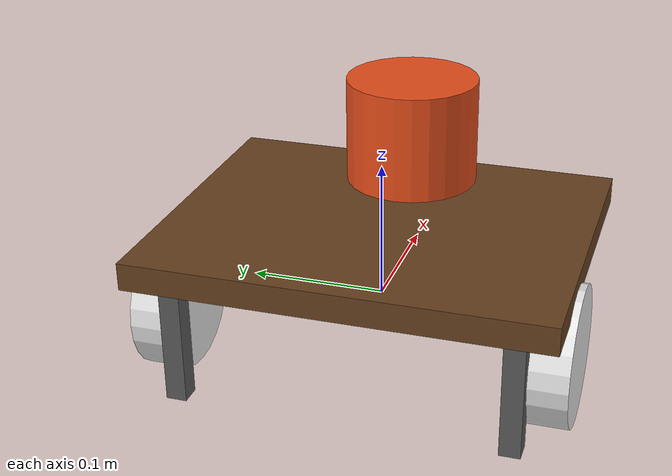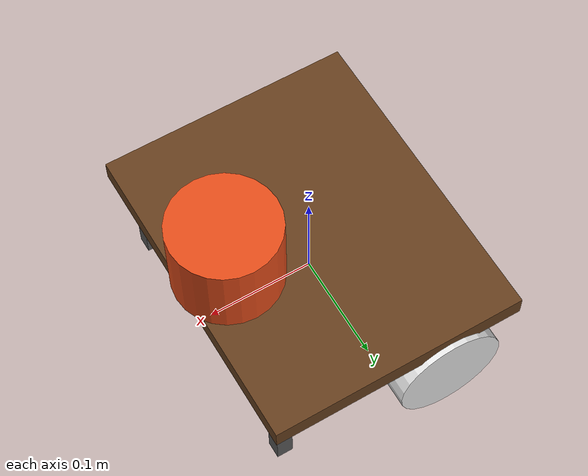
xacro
<?xml version="1.0" ?>
<robot xmlns:xacro="http://www.ros.org/wiki/xacro" name="demo_bot">

    <xacro:include filename="colors.xacro" />
    <xacro:include filename="inertial_macros.xacro"/>
    <xacro:include filename="demo_bot.xacro" />
    <xacro:include filename="lidar.xacro" />
    <xacro:include filename="gazebo_control.xacro" />

</robot>

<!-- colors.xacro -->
<robot xmlns:xacro="http://www.ros.org/wiki/xacro" name="demo_bot">

  <material name="blue">
    <color rgba="0.1 0.4 0.9 1"/>
  </material>
  <material name="red">
    <color rgba="0.9 0.3 0.1 1"/>
  </material>
  <material name="wood">
    <color rgba="0.4 0.25 0.12 1"/>
  </material>
  <material name="gray">
    <color rgba="0.35 0.35 0.35 1"/>
  </material>
  <material name="white">
    <color rgba="0.9 0.9 0.9 1"/>
  </material>

</robot>

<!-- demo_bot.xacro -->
<robot xmlns:xacro="http://www.ros.org/wiki/xacro" name="demo_bot">
    <xacro:include filename="wheels.xacro" />

    <!-- Base Link -->
    <link name="base_link">
        <!-- Table top -->
        <visual name="table_top">
        <origin xyz="0 0 0.05" rpy="0 0 0"/>
        <geometry>
            <box size="0.24 0.3 0.02" />
        </geometry>
        <material name="wood"/>
        </visual>
        <!-- Table legs (ground is at z = -0.05) -->
        <visual name="leg_fl">
        <origin xyz="0.1 0.12 0" rpy="0 0 0"/>
        <geometry><box size="0.015 0.015 0.1" /></geometry>
        <material name="gray"/>
        </visual>
        <visual name="leg_fr">
        <origin xyz="0.1 -0.12 0" rpy="0 0 0"/>
        <geometry><box size="0.015 0.015 0.1" /></geometry>
        <material name="gray"/>
        </visual>
        <visual name="leg_rl">
        <origin xyz="-0.1 0.12 0" rpy="0 0 0"/>
        <geometry><box size="0.015 0.015 0.1" /></geometry>
        <material name="gray"/>
        </visual>
        <visual name="leg_rr">
        <origin xyz="-0.1 -0.12 0" rpy="0 0 0"/>
        <geometry><box size="0.015 0.015 0.1" /></geometry>
        <material name="gray"/>
        </visual>
        <collision>
        <origin xyz="0 0 0" rpy="0 0 0"/>
        <geometry>
            <!-- All dimensions in meters -->
            <box size="0.2 0.24 0.06" />
        </geometry>
        </collision>

        <xacro:inertial_box mass="3" x="0.2" y="0.24" z="0.06">
            <origin xyz="0 0 0" rpy="0 0 0"/>
        </xacro:inertial_box>
    </link>

    <!-- Left Wheel -->
    <xacro:wheel prefix="left" y="0.14" rpy="${pi/2} 0 0" axis="-1"/>
    <!-- Right Wheel -->
    <xacro:wheel prefix="right" y="-0.14" rpy="-${pi/2} 0 0" axis="1"/>

    <!-- Fixed Caster -->
    <joint name="caster_joint" type="fixed">
        <origin xyz="0.06 0 -0.03"/>
        <parent link="base_link"/>
        <child link="caster"/>
    </joint>

    <link name="caster">
        <visual>
        <origin xyz="0 0 0" rpy="0 0 0"/>
        <geometry>
            <!-- All dimensions in meters -->
            <sphere radius="0.02" />
        </geometry>
        <material name="blue"/>
        </visual>
        <collision>
        <origin xyz="0 0 0" rpy="0 0 0"/>
        <geometry>
            <sphere radius="0.02" />
        </geometry>
        </collision>
    </link>

    <gazebo reference="caster">
        <mu1 value="0"/>
        <mu2 value="0"/>
    </gazebo>
</robot>

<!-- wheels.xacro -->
<robot xmlns:xacro="http://www.ros.org/wiki/xacro" name="demo_bot">

<!-- Create a Macro for a Wheel -->
<xacro:macro name="wheel" params="prefix y rpy axis">

    <!-- Wheel Joint -->
    <joint name="${prefix}_wheel_joint" type="continuous">
        <parent link="base_link"/>
        <child link="${prefix}_wheel"/>
        <origin xyz="-0.05 ${y} 0" rpy="${rpy}"/>
        <axis xyz="0 0 ${axis}"/>
        <limit effort="0.5" velocity="10.0"/>
    </joint>

    <!-- Wheel Link -->
    <link name="${prefix}_wheel">
        <origin rpy="0 0 0" xyz="0 0 0"/>
        <visual>
            <geometry>
                <cylinder length="0.03" radius="0.05" />
            </geometry>
            <material name="white"/>
        </visual>
        <collision>
            <geometry>
                <sphere radius="0.05"/>
            </geometry>
        </collision>
        <xacro:inertial_cylinder mass="0.1" length="0.03" radius="0.05">
            <origin xyz="0 0 0" rpy="0 0 0"/>
        </xacro:inertial_cylinder>
    </link>

    <gazebo reference="${prefix}_wheel">
        <mu1 value="0.7"/>
        <mu2 value="0.5"/>
    </gazebo>

</xacro:macro>

</robot>

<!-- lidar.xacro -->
<robot xmlns:xacro="http://www.ros.org/wiki/xacro" name="demo_bot">

    <joint name="lidar_joint" type="fixed">
        <origin xyz="0.08 0 0.10" rpy="0 0 0"/>
        <parent link="base_link"/>
        <child link="lidar_link"/>
    </joint>

    <gazebo reference="lidar_joint">
        <disableFixedJointLumping>true</disableFixedJointLumping>
    </gazebo>

    <link name="lidar_link">
        <visual>
            <origin xyz="0 0 0" rpy="0 0 0"/>
            <geometry>
                <cylinder radius="0.05" length="0.08"/>
            </geometry>
            <material name="red"/>
        </visual>
        <collision>
            <origin xyz="0 0 0" rpy="0 0 0"/>
            <geometry>
                <cylinder radius="0.05" length="0.08"/>
            </geometry>
        </collision>
        <xacro:inertial_cylinder mass="0.1" length="0.08" radius="0.05">
            <origin xyz="0 0 0" rpy="0 0 0"/>
        </xacro:inertial_cylinder>
    </link>

    <gazebo reference="lidar_link">
        <sensor name="lidar" type="gpu_lidar">
            <pose>0 0 0 0 0 0</pose>
            <topic>scan</topic>
            <update_rate>10</update_rate>
            <always_on>true</always_on>
            <visualize>true</visualize>
            <lidar>
                <scan>
                    <horizontal>
                        <samples>360</samples>
                        <min_angle>-3.14159</min_angle>
                        <max_angle>3.14159</max_angle>
                    </horizontal>
                </scan>
                <range>
                    <min>0.08</min>
                    <max>10.0</max>
                    <resolution>0.01</resolution>
                </range>
            </lidar>
        </sensor>
    </gazebo>

</robot>
